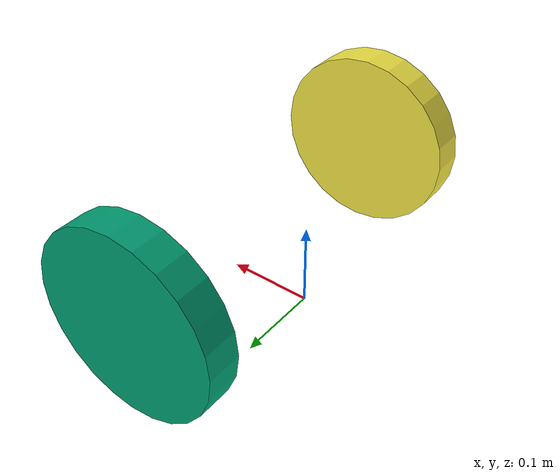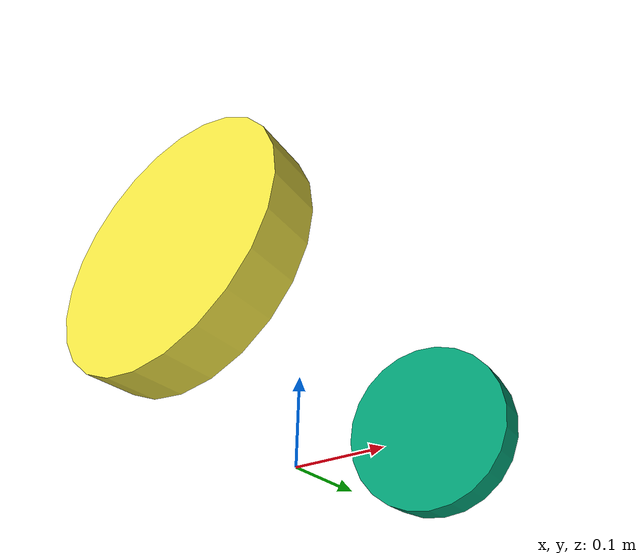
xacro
<?xml version="1.0"?>
<robot name="fx_robot" xmlns:xacro="http://www.ros.org/wiki/xacro">

  <!-- Relative include so the file processes without an installed package. -->
  <xacro:include filename="fx_common.xacro"/>

  <xacro:arg name="base_height" default="0.12"/>
  <xacro:property name="base_height" value="$(arg base_height)"/>
  <xacro:property name="sensor_x" value="0.4"/>

  <link name="base_footprint"/>

  <joint name="base_joint" type="fixed">
    <parent link="base_footprint"/>
    <child link="base_link"/>
    <origin xyz="0 0 ${base_height}" rpy="0 0 0"/>
  </joint>

  <link name="base_link"/>

  <xacro:fx_wheel prefix="drive_left" reflect="1"/>
  <xacro:fx_wheel prefix="drive_right" reflect="-1"/>

  <joint name="sensor_joint" type="fixed">
    <parent link="base_link"/>
    <child link="sensor_link"/>
    <origin xyz="${sensor_x} 0 0.25" rpy="0 0 0"/>
  </joint>

  <link name="sensor_link"/>

</robot>

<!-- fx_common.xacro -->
<robot xmlns:xacro="http://www.ros.org/wiki/xacro">

  <xacro:property name="wheel_radius" value="0.11"/>
  <xacro:property name="wheel_width" value="0.04"/>

  <xacro:macro name="fx_wheel" params="prefix reflect">
    <joint name="${prefix}_joint" type="continuous">
      <parent link="base_link"/>
      <child link="${prefix}_wheel"/>
      <origin xyz="0.05 ${reflect * 0.21} -0.02" rpy="0 0 0"/>
      <axis xyz="0 1 0"/>
    </joint>
    <link name="${prefix}_wheel">
      <visual>
        <origin xyz="0 0 0" rpy="1.5708 0 0"/>
        <geometry>
          <cylinder radius="${wheel_radius}" length="${wheel_width}"/>
        </geometry>
      </visual>
    </link>
  </xacro:macro>

</robot>
